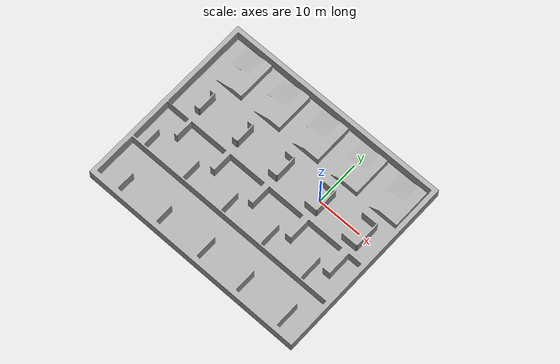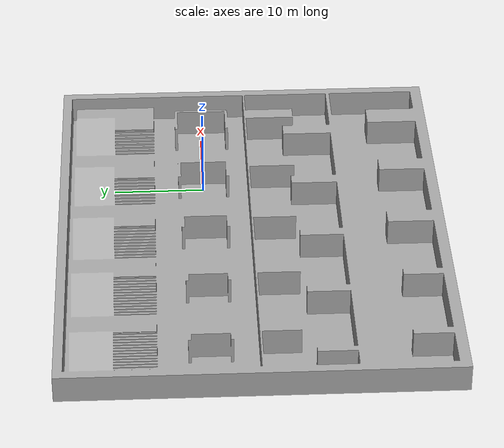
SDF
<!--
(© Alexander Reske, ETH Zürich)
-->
<?xml version="1.0"?>
<sdf version="1.6">
  <world name="isaaclab_train">

    <!-- ==================== Physics ==================== -->
    <physics type="ode">
      <real_time_update_rate>1000.0</real_time_update_rate>
      <max_step_size>0.001</max_step_size>
      <real_time_factor>1</real_time_factor>
    </physics>

    <!-- ==================== Scene ==================== -->
    <scene>
      <ambient>0.10 0.10 0.10 1</ambient>
      <background>0.40 0.50 0.60 1</background>
      <shadows>true</shadows>
    </scene>

    <!-- ==================== Lighting ==================== -->
    <light name="sun" type="directional">
      <cast_shadows>true</cast_shadows>
      <pose>0 0 20 0 0 0</pose>
      <diffuse>0.90 0.90 0.90 1</diffuse>
      <specular>0.00 0.00 0.00 1</specular>
      <direction>-0.5 0.1 -0.9</direction>
      <attenuation>
        <range>1000</range>
        <linear>0.01</linear>
        <constant>0.9</constant>
        <quadratic>0.001</quadratic>
      </attenuation>
    </light>

    <!-- ==================== Gazebo ROS State Plugin ==================== -->
    <plugin name="gazebo_ros_state" filename="libgazebo_ros_state.so">
      <ros>
        <namespace>/</namespace>
      </ros>
    </plugin>

    <!-- ==================== ISAACLAB_TRAIN terrain ==================== -->
    <!--
      模型来源: ISAACLAB_TRAIN (ETH LEE H 层激光扫描地形)
      偏移 (-10, -5, 0) 使地形主体区域覆盖机器人出生点 (0,0)
    -->
    <include>
      <uri>model://ISAACLAB_TRAIN</uri>
      <pose>-10 -5 0 0 0 0</pose>
    </include>

  </world>
</sdf>

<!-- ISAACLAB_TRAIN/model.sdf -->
<sdf version="1.6">
 <model name="ISAACLAB_TRAIN">
   <pose>0 0 0 0 0 0</pose>
   <static>true</static>
   <link name="link">
     <collision name="collision">
       <geometry>
         <mesh>
           <uri>model://ISAACLAB_TRAIN/meshes/ISAACLAB_TRAIN.dae</uri>
         </mesh>
       </geometry>
     </collision>
     <visual name="visual">
       <geometry>
         <mesh>
           <uri>model://ISAACLAB_TRAIN/meshes/ISAACLAB_TRAIN.dae</uri>
         </mesh>
       </geometry>
       <material>
         <ambient>0.10 0.10 0.10 1</ambient>
         <diffuse>0.65 0.65 0.65 1</diffuse>
         <specular>0.00 0.00 0.00 1</specular>
       </material>
     </visual>
   </link>
 </model>
</sdf>
